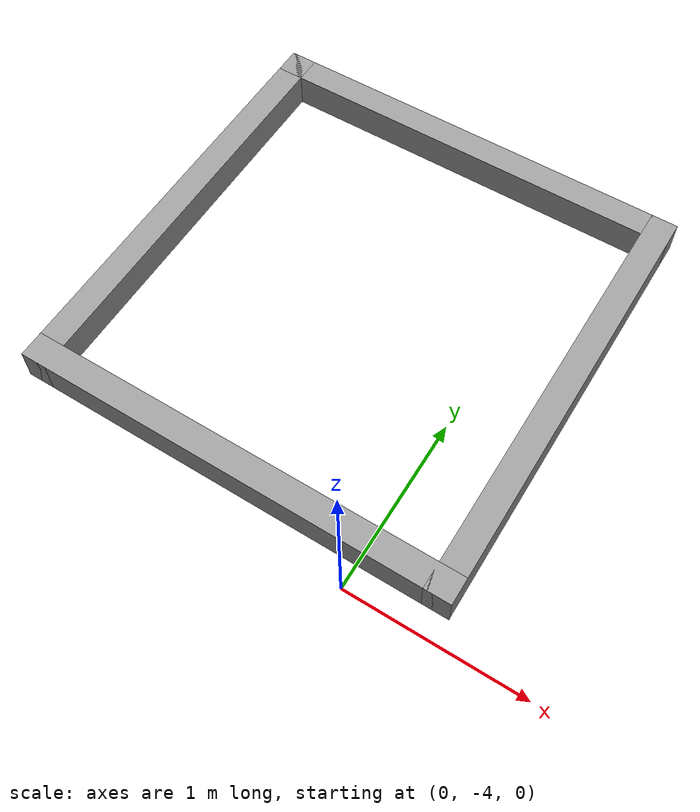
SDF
<?xml version='1.0'?>
<sdf version='1.7'>
  <model name='agv_walls'>
    <pose>-0.745 -1.9325 0 0 -0 0</pose>
    <link name='Wall_0'>
      <collision name='Wall_0_Collision'>
        <geometry>
          <box>
            <size>2.5 0.15 0.2</size>
          </box>
        </geometry>
        <pose>0 0 0.1 0 -0 0</pose>
      </collision>
      <visual name='Wall_0_Visual'>
        <pose>0 0 0.1 0 -0 0</pose>
        <geometry>
          <box>
            <size>2.5 0.15 0.2</size>
          </box>
        </geometry>
        <material>
          <script>
            <uri>file://media/materials/scripts/gazebo.material</uri>
            <name>Gazebo/Grey</name>
          </script>
          <ambient>1 1 1 1</ambient>
        </material>
        <meta>
          <layer>0</layer>
        </meta>
      </visual>
      <pose>-1.175 -0.6825 0 0 -0 -1.5708</pose>
    </link>
    <link name='Wall_1'>
      <collision name='Wall_1_Collision'>
        <geometry>
          <box>
            <size>2.5 0.15 0.2</size>
          </box>
        </geometry>
        <pose>0 0 0.1 0 -0 0</pose>
      </collision>
      <visual name='Wall_1_Visual'>
        <pose>0 0 0.1 0 -0 0</pose>
        <geometry>
          <box>
            <size>2.5 0.15 0.2</size>
          </box>
        </geometry>
        <material>
          <script>
            <uri>file://media/materials/scripts/gazebo.material</uri>
            <name>Gazebo/Grey</name>
          </script>
          <ambient>1 1 1 1</ambient>
        </material>
        <meta>
          <layer>0</layer>
        </meta>
      </visual>
      <pose>-0 -1.8575 0 0 -0 0</pose>
    </link>
    <link name='Wall_2'>
      <collision name='Wall_2_Collision'>
        <geometry>
          <box>
            <size>2.5 0.15 0.2</size>
          </box>
        </geometry>
        <pose>0 0 0.1 0 -0 0</pose>
      </collision>
      <visual name='Wall_2_Visual'>
        <pose>0 0 0.1 0 -0 0</pose>
        <geometry>
          <box>
            <size>2.5 0.15 0.2</size>
          </box>
        </geometry>
        <material>
          <script>
            <uri>file://media/materials/scripts/gazebo.material</uri>
            <name>Gazebo/Grey</name>
          </script>
          <ambient>1 1 1 1</ambient>
        </material>
        <meta>
          <layer>0</layer>
        </meta>
      </visual>
      <pose>1.175 -0.6825 0 0 -0 1.5708</pose>
    </link>
    <link name='Wall_3'>
      <collision name='Wall_3_Collision'>
        <geometry>
          <box>
            <size>2.5 0.15 0.2</size>
          </box>
        </geometry>
        <pose>0 0 0.1 0 -0 0</pose>
      </collision>
      <visual name='Wall_3_Visual'>
        <pose>0 0 0.1 0 -0 0</pose>
        <geometry>
          <box>
            <size>2.5 0.15 0.2</size>
          </box>
        </geometry>
        <material>
          <script>
            <uri>file://media/materials/scripts/gazebo.material</uri>
            <name>Gazebo/Grey</name>
          </script>
          <ambient>1 1 1 1</ambient>
        </material>
        <meta>
          <layer>0</layer>
        </meta>
      </visual>
      <pose>-0 0.4925 0 0 -0 3.14159</pose>
    </link>
    <static>1</static>
  </model>
</sdf>
